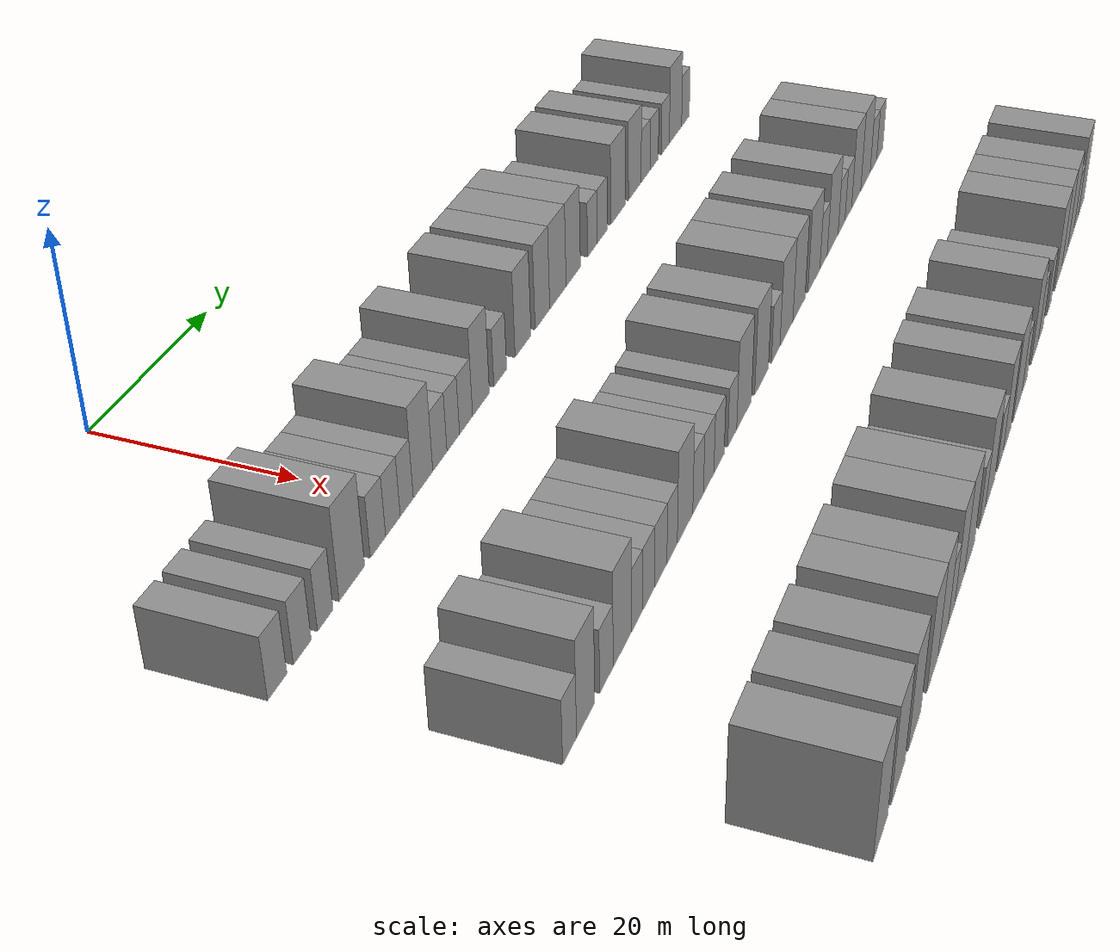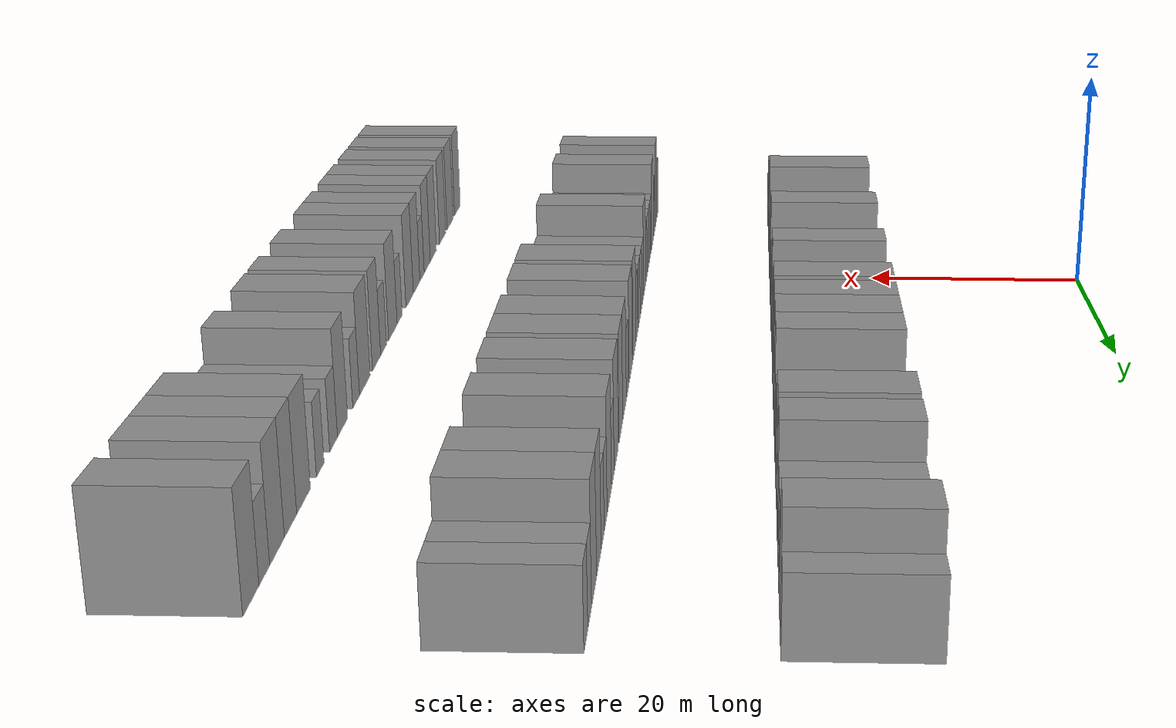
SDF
<sdf version="1.6">
 <world name="default">
  <model name="building_92">
   <static>1</static>
   <pose>25.0000 -22.3426 0 0.000000 0.000000 0.000000</pose>
   <link name="link">
    <pose>0 0 3.00 0 0 0</pose>
    <collision name="collision"><geometry><box><size>10.0000 2.9084 6.0000</size></box></geometry></collision>
    <visual name="visual">
     <cast_shadows>0</cast_shadows>
     <geometry><box><size>10.0000 2.9084 6.0000</size></box></geometry>
     <material>
      <script>
       <uri>model://grey_wall/materials/scripts</uri>
       <uri>model://grey_wall/materials/textures</uri>
       <name>vrc/grey_wall</name>
      </script>
     </material>
    </visual>
   </link>
  </model>
  <model name="building_93">
   <static>1</static>
   <pose>25.0000 -18.4885 0 0.000000 0.000000 0.000000</pose>
   <link name="link">
    <pose>0 0 3.00 0 0 0</pose>
    <collision name="collision"><geometry><box><size>10.0000 2.7998 6.0000</size></box></geometry></collision>
    <visual name="visual">
     <cast_shadows>0</cast_shadows>
     <geometry><box><size>10.0000 2.7998 6.0000</size></box></geometry>
     <material>
      <script>
       <uri>model://grey_wall/materials/scripts</uri>
       <uri>model://grey_wall/materials/textures</uri>
       <name>vrc/grey_wall</name>
      </script>
     </material>
    </visual>
   </link>
  </model>
  <model name="building_94">
   <static>1</static>
   <pose>25.0000 -14.8160 0 0.000000 0.000000 0.000000</pose>
   <link name="link">
    <pose>0 0 3.00 0 0 0</pose>
    <collision name="collision"><geometry><box><size>10.0000 2.5451 6.0000</size></box></geometry></collision>
    <visual name="visual">
     <cast_shadows>0</cast_shadows>
     <geometry><box><size>10.0000 2.5451 6.0000</size></box></geometry>
     <material>
      <script>
       <uri>model://grey_wall/materials/scripts</uri>
       <uri>model://grey_wall/materials/textures</uri>
       <name>vrc/grey_wall</name>
      </script>
     </material>
    </visual>
   </link>
  </model>
  <model name="building_95">
   <static>1</static>
   <pose>25.0000 -10.3498 0 0.000000 0.000000 0.000000</pose>
   <link name="link">
    <pose>0 0 4.50 0 0 0</pose>
    <collision name="collision"><geometry><box><size>10.0000 4.3874 9.0000</size></box></geometry></collision>
    <visual name="visual">
     <cast_shadows>0</cast_shadows>
     <geometry><box><size>10.0000 4.3874 9.0000</size></box></geometry>
     <material>
      <script>
       <uri>model://grey_wall/materials/scripts</uri>
       <uri>model://grey_wall/materials/textures</uri>
       <name>vrc/grey_wall</name>
      </script>
     </material>
    </visual>
   </link>
  </model>
  <model name="building_96">
   <static>1</static>
   <pose>25.0000 -5.7723 0 0.000000 0.000000 0.000000</pose>
   <link name="link">
    <pose>0 0 3.00 0 0 0</pose>
    <collision name="collision"><geometry><box><size>10.0000 2.7677 6.0000</size></box></geometry></collision>
    <visual name="visual">
     <cast_shadows>0</cast_shadows>
     <geometry><box><size>10.0000 2.7677 6.0000</size></box></geometry>
     <material>
      <script>
       <uri>model://grey_wall/materials/scripts</uri>
       <uri>model://grey_wall/materials/textures</uri>
       <name>vrc/grey_wall</name>
      </script>
     </material>
    </visual>
   </link>
  </model>
  <model name="building_97">
   <static>1</static>
   <pose>25.0000 -3.0412 0 0.000000 0.000000 0.000000</pose>
   <link name="link">
    <pose>0 0 3.00 0 0 0</pose>
    <collision name="collision"><geometry><box><size>10.0000 2.6944 6.0000</size></box></geometry></collision>
    <visual name="visual">
     <cast_shadows>0</cast_shadows>
     <geometry><box><size>10.0000 2.6944 6.0000</size></box></geometry>
     <material>
      <script>
       <uri>model://grey_wall/materials/scripts</uri>
       <uri>model://grey_wall/materials/textures</uri>
       <name>vrc/grey_wall</name>
      </script>
     </material>
    </visual>
   </link>
  </model>
  <model name="building_98">
   <static>1</static>
   <pose>25.0000 -0.4532 0 0.000000 0.000000 0.000000</pose>
   <link name="link">
    <pose>0 0 3.00 0 0 0</pose>
    <collision name="collision"><geometry><box><size>10.0000 2.4816 6.0000</size></box></geometry></collision>
    <visual name="visual">
     <cast_shadows>0</cast_shadows>
     <geometry><box><size>10.0000 2.4816 6.0000</size></box></geometry>
     <material>
      <script>
       <uri>model://grey_wall/materials/scripts</uri>
       <uri>model://grey_wall/materials/textures</uri>
       <name>vrc/grey_wall</name>
      </script>
     </material>
    </visual>
   </link>
  </model>
  <model name="building_99">
   <static>1</static>
   <pose>25.0000 2.6974 0 0.000000 0.000000 0.000000</pose>
   <link name="link">
    <pose>0 0 4.50 0 0 0</pose>
    <collision name="collision"><geometry><box><size>10.0000 3.8196 9.0000</size></box></geometry></collision>
    <visual name="visual">
     <cast_shadows>0</cast_shadows>
     <geometry><box><size>10.0000 3.8196 9.0000</size></box></geometry>
     <material>
      <script>
       <uri>model://grey_wall/materials/scripts</uri>
       <uri>model://grey_wall/materials/textures</uri>
       <name>vrc/grey_wall</name>
      </script>
     </material>
    </visual>
   </link>
  </model>
  <model name="building_100">
   <static>1</static>
   <pose>25.0000 6.0445 0 0.000000 0.000000 0.000000</pose>
   <link name="link">
    <pose>0 0 3.00 0 0 0</pose>
    <collision name="collision"><geometry><box><size>10.0000 2.8745 6.0000</size></box></geometry></collision>
    <visual name="visual">
     <cast_shadows>0</cast_shadows>
     <geometry><box><size>10.0000 2.8745 6.0000</size></box></geometry>
     <material>
      <script>
       <uri>model://grey_wall/materials/scripts</uri>
       <uri>model://grey_wall/materials/textures</uri>
       <name>vrc/grey_wall</name>
      </script>
     </material>
    </visual>
   </link>
  </model>
  <model name="building_101">
   <static>1</static>
   <pose>25.0000 8.7948 0 0.000000 0.000000 0.000000</pose>
   <link name="link">
    <pose>0 0 3.00 0 0 0</pose>
    <collision name="collision"><geometry><box><size>10.0000 2.6261 6.0000</size></box></geometry></collision>
    <visual name="visual">
     <cast_shadows>0</cast_shadows>
     <geometry><box><size>10.0000 2.6261 6.0000</size></box></geometry>
     <material>
      <script>
       <uri>model://grey_wall/materials/scripts</uri>
       <uri>model://grey_wall/materials/textures</uri>
       <name>vrc/grey_wall</name>
      </script>
     </material>
    </visual>
   </link>
  </model>
  <model name="building_102">
   <static>1</static>
   <pose>25.0000 11.5036 0 0.000000 0.000000 0.000000</pose>
   <link name="link">
    <pose>0 0 3.00 0 0 0</pose>
    <collision name="collision"><geometry><box><size>10.0000 2.7913 6.0000</size></box></geometry></collision>
    <visual name="visual">
     <cast_shadows>0</cast_shadows>
     <geometry><box><size>10.0000 2.7913 6.0000</size></box></geometry>
     <material>
      <script>
       <uri>model://grey_wall/materials/scripts</uri>
       <uri>model://grey_wall/materials/textures</uri>
       <name>vrc/grey_wall</name>
      </script>
     </material>
    </visual>
   </link>
  </model>
  <model name="building_103">
   <static>1</static>
   <pose>25.0000 14.7553 0 0.000000 0.000000 0.000000</pose>
   <link name="link">
    <pose>0 0 4.50 0 0 0</pose>
    <collision name="collision"><geometry><box><size>10.0000 3.7121 9.0000</size></box></geometry></collision>
    <visual name="visual">
     <cast_shadows>0</cast_shadows>
     <geometry><box><size>10.0000 3.7121 9.0000</size></box></geometry>
     <material>
      <script>
       <uri>model://grey_wall/materials/scripts</uri>
       <uri>model://grey_wall/materials/textures</uri>
       <name>vrc/grey_wall</name>
      </script>
     </material>
    </visual>
   </link>
  </model>
  <model name="building_104">
   <static>1</static>
   <pose>25.0000 19.0760 0 0.000000 0.000000 0.000000</pose>
   <link name="link">
    <pose>0 0 3.00 0 0 0</pose>
    <collision name="collision"><geometry><box><size>10.0000 2.9293 6.0000</size></box></geometry></collision>
    <visual name="visual">
     <cast_shadows>0</cast_shadows>
     <geometry><box><size>10.0000 2.9293 6.0000</size></box></geometry>
     <material>
      <script>
       <uri>model://grey_wall/materials/scripts</uri>
       <uri>model://grey_wall/materials/textures</uri>
       <name>vrc/grey_wall</name>
      </script>
     </material>
    </visual>
   </link>
  </model>
  <model name="building_105">
   <static>1</static>
   <pose>25.0000 24.4600 0 0.000000 0.000000 0.000000</pose>
   <link name="link">
    <pose>0 0 4.50 0 0 0</pose>
    <collision name="collision"><geometry><box><size>10.0000 3.8385 9.0000</size></box></geometry></collision>
    <visual name="visual">
     <cast_shadows>0</cast_shadows>
     <geometry><box><size>10.0000 3.8385 9.0000</size></box></geometry>
     <material>
      <script>
       <uri>model://grey_wall/materials/scripts</uri>
       <uri>model://grey_wall/materials/textures</uri>
       <name>vrc/grey_wall</name>
      </script>
     </material>
    </visual>
   </link>
  </model>
  <model name="building_106">
   <static>1</static>
   <pose>25.0000 29.2253 0 0.000000 0.000000 0.000000</pose>
   <link name="link">
    <pose>0 0 4.50 0 0 0</pose>
    <collision name="collision"><geometry><box><size>10.0000 3.6921 9.0000</size></box></geometry></collision>
    <visual name="visual">
     <cast_shadows>0</cast_shadows>
     <geometry><box><size>10.0000 3.6921 9.0000</size></box></geometry>
     <material>
      <script>
       <uri>model://grey_wall/materials/scripts</uri>
       <uri>model://grey_wall/materials/textures</uri>
       <name>vrc/grey_wall</name>
      </script>
     </material>
    </visual>
   </link>
  </model>
  <model name="building_107">
   <static>1</static>
   <pose>25.0000 33.2124 0 0.000000 0.000000 0.000000</pose>
   <link name="link">
    <pose>0 0 4.50 0 0 0</pose>
    <collision name="collision"><geometry><box><size>10.0000 4.2822 9.0000</size></box></geometry></collision>
    <visual name="visual">
     <cast_shadows>0</cast_shadows>
     <geometry><box><size>10.0000 4.2822 9.0000</size></box></geometry>
     <material>
      <script>
       <uri>model://grey_wall/materials/scripts</uri>
       <uri>model://grey_wall/materials/textures</uri>
       <name>vrc/grey_wall</name>
      </script>
     </material>
    </visual>
   </link>
  </model>
  <model name="building_108">
   <static>1</static>
   <pose>25.0000 37.2777 0 0.000000 0.000000 0.000000</pose>
   <link name="link">
    <pose>0 0 4.50 0 0 0</pose>
    <collision name="collision"><geometry><box><size>10.0000 3.8485 9.0000</size></box></geometry></collision>
    <visual name="visual">
     <cast_shadows>0</cast_shadows>
     <geometry><box><size>10.0000 3.8485 9.0000</size></box></geometry>
     <material>
      <script>
       <uri>model://grey_wall/materials/scripts</uri>
       <uri>model://grey_wall/materials/textures</uri>
       <name>vrc/grey_wall</name>
      </script>
     </material>
    </visual>
   </link>
  </model>
  <model name="building_109">
   <static>1</static>
   <pose>25.0000 42.5548 0 0.000000 0.000000 0.000000</pose>
   <link name="link">
    <pose>0 0 3.00 0 0 0</pose>
    <collision name="collision"><geometry><box><size>10.0000 2.7056 6.0000</size></box></geometry></collision>
    <visual name="visual">
     <cast_shadows>0</cast_shadows>
     <geometry><box><size>10.0000 2.7056 6.0000</size></box></geometry>
     <material>
      <script>
       <uri>model://grey_wall/materials/scripts</uri>
       <uri>model://grey_wall/materials/textures</uri>
       <name>vrc/grey_wall</name>
      </script>
     </material>
    </visual>
   </link>
  </model>
  <model name="building_110">
   <static>1</static>
   <pose>25.0000 45.3717 0 0.000000 0.000000 0.000000</pose>
   <link name="link">
    <pose>0 0 3.00 0 0 0</pose>
    <collision name="collision"><geometry><box><size>10.0000 2.9283 6.0000</size></box></geometry></collision>
    <visual name="visual">
     <cast_shadows>0</cast_shadows>
     <geometry><box><size>10.0000 2.9283 6.0000</size></box></geometry>
     <material>
      <script>
       <uri>model://grey_wall/materials/scripts</uri>
       <uri>model://grey_wall/materials/textures</uri>
       <name>vrc/grey_wall</name>
      </script>
     </material>
    </visual>
   </link>
  </model>
  <model name="building_111">
   <static>1</static>
   <pose>25.0000 49.9903 0 0.000000 0.000000 0.000000</pose>
   <link name="link">
    <pose>0 0 4.50 0 0 0</pose>
    <collision name="collision"><geometry><box><size>10.0000 4.3088 9.0000</size></box></geometry></collision>
    <visual name="visual">
     <cast_shadows>0</cast_shadows>
     <geometry><box><size>10.0000 4.3088 9.0000</size></box></geometry>
     <material>
      <script>
       <uri>model://grey_wall/materials/scripts</uri>
       <uri>model://grey_wall/materials/textures</uri>
       <name>vrc/grey_wall</name>
      </script>
     </material>
    </visual>
   </link>
  </model>
  <model name="building_112">
   <static>1</static>
   <pose>25.0000 55.1415 0 0.000000 0.000000 0.000000</pose>
   <link name="link">
    <pose>0 0 4.50 0 0 0</pose>
    <collision name="collision"><geometry><box><size>10.0000 3.9935 9.0000</size></box></geometry></collision>
    <visual name="visual">
     <cast_shadows>0</cast_shadows>
     <geometry><box><size>10.0000 3.9935 9.0000</size></box></geometry>
     <material>
      <script>
       <uri>model://grey_wall/materials/scripts</uri>
       <uri>model://grey_wall/materials/textures</uri>
       <name>vrc/grey_wall</name>
      </script>
     </material>
    </visual>
   </link>
  </model>
  <model name="building_113">
   <static>1</static>
   <pose>25.0000 58.5464 0 0.000000 0.000000 0.000000</pose>
   <link name="link">
    <pose>0 0 3.00 0 0 0</pose>
    <collision name="collision"><geometry><box><size>10.0000 2.8163 6.0000</size></box></geometry></collision>
    <visual name="visual">
     <cast_shadows>0</cast_shadows>
     <geometry><box><size>10.0000 2.8163 6.0000</size></box></geometry>
     <material>
      <script>
       <uri>model://grey_wall/materials/scripts</uri>
       <uri>model://grey_wall/materials/textures</uri>
       <name>vrc/grey_wall</name>
      </script>
     </material>
    </visual>
   </link>
  </model>
  <model name="building_114">
   <static>1</static>
   <pose>25.0000 61.3290 0 0.000000 0.000000 0.000000</pose>
   <link name="link">
    <pose>0 0 3.00 0 0 0</pose>
    <collision name="collision"><geometry><box><size>10.0000 2.7488 6.0000</size></box></geometry></collision>
    <visual name="visual">
     <cast_shadows>0</cast_shadows>
     <geometry><box><size>10.0000 2.7488 6.0000</size></box></geometry>
     <material>
      <script>
       <uri>model://grey_wall/materials/scripts</uri>
       <uri>model://grey_wall/materials/textures</uri>
       <name>vrc/grey_wall</name>
      </script>
     </material>
    </visual>
   </link>
  </model>
  <model name="building_115">
   <static>1</static>
   <pose>25.0000 65.0555 0 0.000000 0.000000 0.000000</pose>
   <link name="link">
    <pose>0 0 3.00 0 0 0</pose>
    <collision name="collision"><geometry><box><size>10.0000 2.7043 6.0000</size></box></geometry></collision>
    <visual name="visual">
     <cast_shadows>0</cast_shadows>
     <geometry><box><size>10.0000 2.7043 6.0000</size></box></geometry>
     <material>
      <script>
       <uri>model://grey_wall/materials/scripts</uri>
       <uri>model://grey_wall/materials/textures</uri>
       <name>vrc/grey_wall</name>
      </script>
     </material>
    </visual>
   </link>
  </model>
  <model name="building_116">
   <static>1</static>
   <pose>25.0000 68.5303 0 0.000000 0.000000 0.000000</pose>
   <link name="link">
    <pose>0 0 4.50 0 0 0</pose>
    <collision name="collision"><geometry><box><size>10.0000 4.2454 9.0000</size></box></geometry></collision>
    <visual name="visual">
     <cast_shadows>0</cast_shadows>
     <geometry><box><size>10.0000 4.2454 9.0000</size></box></geometry>
     <material>
      <script>
       <uri>model://grey_wall/materials/scripts</uri>
       <uri>model://grey_wall/materials/textures</uri>
       <name>vrc/grey_wall</name>
      </script>
     </material>
    </visual>
   </link>
  </model>
  <model name="building_117">
   <static>1</static>
   <pose>25.0000 72.0196 0 0.000000 0.000000 0.000000</pose>
   <link name="link">
    <pose>0 0 3.00 0 0 0</pose>
    <collision name="collision"><geometry><box><size>10.0000 2.7332 6.0000</size></box></geometry></collision>
    <visual name="visual">
     <cast_shadows>0</cast_shadows>
     <geometry><box><size>10.0000 2.7332 6.0000</size></box></geometry>
     <material>
      <script>
       <uri>model://grey_wall/materials/scripts</uri>
       <uri>model://grey_wall/materials/textures</uri>
       <name>vrc/grey_wall</name>
      </script>
     </material>
    </visual>
   </link>
  </model>
  <model name="building_278">
   <static>1</static>
   <pose>47.0000 -21.2920 0 0.000000 0.000000 0.000000</pose>
   <link name="link">
    <pose>0 0 3.00 0 0 0</pose>
    <collision name="collision"><geometry><box><size>10.0000 2.6957 6.0000</size></box></geometry></collision>
    <visual name="visual">
     <cast_shadows>0</cast_shadows>
     <geometry><box><size>10.0000 2.6957 6.0000</size></box></geometry>
     <material>
      <script>
       <uri>model://grey_wall/materials/scripts</uri>
       <uri>model://grey_wall/materials/textures</uri>
       <name>vrc/grey_wall</name>
      </script>
     </material>
    </visual>
   </link>
  </model>
  <model name="building_279">
   <static>1</static>
   <pose>47.0000 -18.1196 0 0.000000 0.000000 0.000000</pose>
   <link name="link">
    <pose>0 0 4.50 0 0 0</pose>
    <collision name="collision"><geometry><box><size>10.0000 3.6491 9.0000</size></box></geometry></collision>
    <visual name="visual">
     <cast_shadows>0</cast_shadows>
     <geometry><box><size>10.0000 3.6491 9.0000</size></box></geometry>
     <material>
      <script>
       <uri>model://grey_wall/materials/scripts</uri>
       <uri>model://grey_wall/materials/textures</uri>
       <name>vrc/grey_wall</name>
      </script>
     </material>
    </visual>
   </link>
  </model>
  <model name="building_280">
   <static>1</static>
   <pose>47.0000 -13.8722 0 0.000000 0.000000 0.000000</pose>
   <link name="link">
    <pose>0 0 3.00 0 0 0</pose>
    <collision name="collision"><geometry><box><size>10.0000 2.8456 6.0000</size></box></geometry></collision>
    <visual name="visual">
     <cast_shadows>0</cast_shadows>
     <geometry><box><size>10.0000 2.8456 6.0000</size></box></geometry>
     <material>
      <script>
       <uri>model://grey_wall/materials/scripts</uri>
       <uri>model://grey_wall/materials/textures</uri>
       <name>vrc/grey_wall</name>
      </script>
     </material>
    </visual>
   </link>
  </model>
  <model name="building_281">
   <static>1</static>
   <pose>47.0000 -10.4534 0 0.000000 0.000000 0.000000</pose>
   <link name="link">
    <pose>0 0 4.50 0 0 0</pose>
    <collision name="collision"><geometry><box><size>10.0000 3.9921 9.0000</size></box></geometry></collision>
    <visual name="visual">
     <cast_shadows>0</cast_shadows>
     <geometry><box><size>10.0000 3.9921 9.0000</size></box></geometry>
     <material>
      <script>
       <uri>model://grey_wall/materials/scripts</uri>
       <uri>model://grey_wall/materials/textures</uri>
       <name>vrc/grey_wall</name>
      </script>
     </material>
    </visual>
   </link>
  </model>
  <model name="building_282">
   <static>1</static>
   <pose>47.0000 -7.2385 0 0.000000 0.000000 0.000000</pose>
   <link name="link">
    <pose>0 0 3.00 0 0 0</pose>
    <collision name="collision"><geometry><box><size>10.0000 2.4376 6.0000</size></box></geometry></collision>
    <visual name="visual">
     <cast_shadows>0</cast_shadows>
     <geometry><box><size>10.0000 2.4376 6.0000</size></box></geometry>
     <material>
      <script>
       <uri>model://grey_wall/materials/scripts</uri>
       <uri>model://grey_wall/materials/textures</uri>
       <name>vrc/grey_wall</name>
      </script>
     </material>
    </visual>
   </link>
  </model>
  <model name="building_283">
   <static>1</static>
   <pose>47.0000 -4.5840 0 0.000000 0.000000 0.000000</pose>
   <link name="link">
    <pose>0 0 3.00 0 0 0</pose>
    <collision name="collision"><geometry><box><size>10.0000 2.8716 6.0000</size></box></geometry></collision>
    <visual name="visual">
     <cast_shadows>0</cast_shadows>
     <geometry><box><size>10.0000 2.8716 6.0000</size></box></geometry>
     <material>
      <script>
       <uri>model://grey_wall/materials/scripts</uri>
       <uri>model://grey_wall/materials/textures</uri>
       <name>vrc/grey_wall</name>
      </script>
     </material>
    </visual>
   </link>
  </model>
  <model name="building_284">
   <static>1</static>
   <pose>47.0000 -1.6698 0 0.000000 0.000000 0.000000</pose>
   <link name="link">
    <pose>0 0 3.00 0 0 0</pose>
    <collision name="collision"><geometry><box><size>10.0000 2.9567 6.0000</size></box></geometry></collision>
    <visual name="visual">
     <cast_shadows>0</cast_shadows>
     <geometry><box><size>10.0000 2.9567 6.0000</size></box></geometry>
     <material>
      <script>
       <uri>model://grey_wall/materials/scripts</uri>
       <uri>model://grey_wall/materials/textures</uri>
       <name>vrc/grey_wall</name>
      </script>
     </material>
    </visual>
   </link>
  </model>
  <model name="building_285">
   <static>1</static>
   <pose>47.0000 1.0946 0 0.000000 0.000000 0.000000</pose>
   <link name="link">
    <pose>0 0 3.00 0 0 0</pose>
    <collision name="collision"><geometry><box><size>10.0000 2.5721 6.0000</size></box></geometry></collision>
    <visual name="visual">
     <cast_shadows>0</cast_shadows>
     <geometry><box><size>10.0000 2.5721 6.0000</size></box></geometry>
     <material>
      <script>
       <uri>model://grey_wall/materials/scripts</uri>
       <uri>model://grey_wall/materials/textures</uri>
       <name>vrc/grey_wall</name>
      </script>
     </material>
    </visual>
   </link>
  </model>
  <model name="building_286">
   <static>1</static>
   <pose>47.0000 4.3606 0 0.000000 0.000000 0.000000</pose>
   <link name="link">
    <pose>0 0 4.50 0 0 0</pose>
    <collision name="collision"><geometry><box><size>10.0000 3.9599 9.0000</size></box></geometry></collision>
    <visual name="visual">
     <cast_shadows>0</cast_shadows>
     <geometry><box><size>10.0000 3.9599 9.0000</size></box></geometry>
     <material>
      <script>
       <uri>model://grey_wall/materials/scripts</uri>
       <uri>model://grey_wall/materials/textures</uri>
       <name>vrc/grey_wall</name>
      </script>
     </material>
    </visual>
   </link>
  </model>
  <model name="building_287">
   <static>1</static>
   <pose>47.0000 7.7566 0 0.000000 0.000000 0.000000</pose>
   <link name="link">
    <pose>0 0 3.00 0 0 0</pose>
    <collision name="collision"><geometry><box><size>10.0000 2.8321 6.0000</size></box></geometry></collision>
    <visual name="visual">
     <cast_shadows>0</cast_shadows>
     <geometry><box><size>10.0000 2.8321 6.0000</size></box></geometry>
     <material>
      <script>
       <uri>model://grey_wall/materials/scripts</uri>
       <uri>model://grey_wall/materials/textures</uri>
       <name>vrc/grey_wall</name>
      </script>
     </material>
    </visual>
   </link>
  </model>
  <model name="building_288">
   <static>1</static>
   <pose>47.0000 10.5924 0 0.000000 0.000000 0.000000</pose>
   <link name="link">
    <pose>0 0 3.00 0 0 0</pose>
    <collision name="collision"><geometry><box><size>10.0000 2.8394 6.0000</size></box></geometry></collision>
    <visual name="visual">
     <cast_shadows>0</cast_shadows>
     <geometry><box><size>10.0000 2.8394 6.0000</size></box></geometry>
     <material>
      <script>
       <uri>model://grey_wall/materials/scripts</uri>
       <uri>model://grey_wall/materials/textures</uri>
       <name>vrc/grey_wall</name>
      </script>
     </material>
    </visual>
   </link>
  </model>
  <model name="building_289">
   <static>1</static>
   <pose>47.0000 13.4648 0 0.000000 0.000000 0.000000</pose>
   <link name="link">
    <pose>0 0 3.00 0 0 0</pose>
    <collision name="collision"><geometry><box><size>10.0000 2.9056 6.0000</size></box></geometry></collision>
    <visual name="visual">
     <cast_shadows>0</cast_shadows>
     <geometry><box><size>10.0000 2.9056 6.0000</size></box></geometry>
     <material>
      <script>
       <uri>model://grey_wall/materials/scripts</uri>
       <uri>model://grey_wall/materials/textures</uri>
       <name>vrc/grey_wall</name>
      </script>
     </material>
    </visual>
   </link>
  </model>
  <model name="building_290">
   <static>1</static>
   <pose>47.0000 17.2246 0 0.000000 0.000000 0.000000</pose>
   <link name="link">
    <pose>0 0 3.00 0 0 0</pose>
    <collision name="collision"><geometry><box><size>10.0000 2.6140 6.0000</size></box></geometry></collision>
    <visual name="visual">
     <cast_shadows>0</cast_shadows>
     <geometry><box><size>10.0000 2.6140 6.0000</size></box></geometry>
     <material>
      <script>
       <uri>model://grey_wall/materials/scripts</uri>
       <uri>model://grey_wall/materials/textures</uri>
       <name>vrc/grey_wall</name>
      </script>
     </material>
    </visual>
   </link>
  </model>
  <model name="building_291">
   <static>1</static>
   <pose>47.0000 20.7468 0 0.000000 0.000000 0.000000</pose>
   <link name="link">
    <pose>0 0 4.50 0 0 0</pose>
    <collision name="collision"><geometry><box><size>10.0000 4.4303 9.0000</size></box></geometry></collision>
    <visual name="visual">
     <cast_shadows>0</cast_shadows>
     <geometry><box><size>10.0000 4.4303 9.0000</size></box></geometry>
     <material>
      <script>
       <uri>model://grey_wall/materials/scripts</uri>
       <uri>model://grey_wall/materials/textures</uri>
       <name>vrc/grey_wall</name>
      </script>
     </material>
    </visual>
   </link>
  </model>
  <model name="building_292">
   <static>1</static>
   <pose>47.0000 26.1352 0 0.000000 0.000000 0.000000</pose>
   <link name="link">
    <pose>0 0 4.50 0 0 0</pose>
    <collision name="collision"><geometry><box><size>10.0000 4.3466 9.0000</size></box></geometry></collision>
    <visual name="visual">
     <cast_shadows>0</cast_shadows>
     <geometry><box><size>10.0000 4.3466 9.0000</size></box></geometry>
     <material>
      <script>
       <uri>model://grey_wall/materials/scripts</uri>
       <uri>model://grey_wall/materials/textures</uri>
       <name>vrc/grey_wall</name>
      </script>
     </material>
    </visual>
   </link>
  </model>
  <model name="building_293">
   <static>1</static>
   <pose>47.0000 30.7119 0 0.000000 0.000000 0.000000</pose>
   <link name="link">
    <pose>0 0 3.00 0 0 0</pose>
    <collision name="collision"><geometry><box><size>10.0000 2.8070 6.0000</size></box></geometry></collision>
    <visual name="visual">
     <cast_shadows>0</cast_shadows>
     <geometry><box><size>10.0000 2.8070 6.0000</size></box></geometry>
     <material>
      <script>
       <uri>model://grey_wall/materials/scripts</uri>
       <uri>model://grey_wall/materials/textures</uri>
       <name>vrc/grey_wall</name>
      </script>
     </material>
    </visual>
   </link>
  </model>
  <model name="building_294">
   <static>1</static>
   <pose>47.0000 34.3242 0 0.000000 0.000000 0.000000</pose>
   <link name="link">
    <pose>0 0 4.50 0 0 0</pose>
    <collision name="collision"><geometry><box><size>10.0000 4.4177 9.0000</size></box></geometry></collision>
    <visual name="visual">
     <cast_shadows>0</cast_shadows>
     <geometry><box><size>10.0000 4.4177 9.0000</size></box></geometry>
     <material>
      <script>
       <uri>model://grey_wall/materials/scripts</uri>
       <uri>model://grey_wall/materials/textures</uri>
       <name>vrc/grey_wall</name>
      </script>
     </material>
    </visual>
   </link>
  </model>
  <model name="building_295">
   <static>1</static>
   <pose>47.0000 38.7011 0 0.000000 0.000000 0.000000</pose>
   <link name="link">
    <pose>0 0 4.50 0 0 0</pose>
    <collision name="collision"><geometry><box><size>10.0000 4.3360 9.0000</size></box></geometry></collision>
    <visual name="visual">
     <cast_shadows>0</cast_shadows>
     <geometry><box><size>10.0000 4.3360 9.0000</size></box></geometry>
     <material>
      <script>
       <uri>model://grey_wall/materials/scripts</uri>
       <uri>model://grey_wall/materials/textures</uri>
       <name>vrc/grey_wall</name>
      </script>
     </material>
    </visual>
   </link>
  </model>
  <model name="building_296">
   <static>1</static>
   <pose>47.0000 44.0962 0 0.000000 0.000000 0.000000</pose>
   <link name="link">
    <pose>0 0 4.50 0 0 0</pose>
    <collision name="collision"><geometry><box><size>10.0000 4.4543 9.0000</size></box></geometry></collision>
    <visual name="visual">
     <cast_shadows>0</cast_shadows>
     <geometry><box><size>10.0000 4.4543 9.0000</size></box></geometry>
     <material>
      <script>
       <uri>model://grey_wall/materials/scripts</uri>
       <uri>model://grey_wall/materials/textures</uri>
       <name>vrc/grey_wall</name>
      </script>
     </material>
    </visual>
   </link>
  </model>
  <model name="building_297">
   <static>1</static>
   <pose>47.0000 47.7368 0 0.000000 0.000000 0.000000</pose>
   <link name="link">
    <pose>0 0 3.00 0 0 0</pose>
    <collision name="collision"><geometry><box><size>10.0000 2.8269 6.0000</size></box></geometry></collision>
    <visual name="visual">
     <cast_shadows>0</cast_shadows>
     <geometry><box><size>10.0000 2.8269 6.0000</size></box></geometry>
     <material>
      <script>
       <uri>model://grey_wall/materials/scripts</uri>
       <uri>model://grey_wall/materials/textures</uri>
       <name>vrc/grey_wall</name>
      </script>
     </material>
    </visual>
   </link>
  </model>
  <model name="building_298">
   <static>1</static>
   <pose>47.0000 51.3016 0 0.000000 0.000000 0.000000</pose>
   <link name="link">
    <pose>0 0 4.50 0 0 0</pose>
    <collision name="collision"><geometry><box><size>10.0000 4.3028 9.0000</size></box></geometry></collision>
    <visual name="visual">
     <cast_shadows>0</cast_shadows>
     <geometry><box><size>10.0000 4.3028 9.0000</size></box></geometry>
     <material>
      <script>
       <uri>model://grey_wall/materials/scripts</uri>
       <uri>model://grey_wall/materials/textures</uri>
       <name>vrc/grey_wall</name>
      </script>
     </material>
    </visual>
   </link>
  </model>
  <model name="building_299">
   <static>1</static>
   <pose>47.0000 54.8426 0 0.000000 0.000000 0.000000</pose>
   <link name="link">
    <pose>0 0 3.00 0 0 0</pose>
    <collision name="collision"><geometry><box><size>10.0000 2.7792 6.0000</size></box></geometry></collision>
    <visual name="visual">
     <cast_shadows>0</cast_shadows>
     <geometry><box><size>10.0000 2.7792 6.0000</size></box></geometry>
     <material>
      <script>
       <uri>model://grey_wall/materials/scripts</uri>
       <uri>model://grey_wall/materials/textures</uri>
       <name>vrc/grey_wall</name>
      </script>
     </material>
    </visual>
   </link>
  </model>
  <model name="building_300">
   <static>1</static>
   <pose>47.0000 57.6184 0 0.000000 0.000000 0.000000</pose>
   <link name="link">
    <pose>0 0 3.00 0 0 0</pose>
    <collision name="collision"><geometry><box><size>10.0000 2.7725 6.0000</size></box></geometry></collision>
    <visual name="visual">
     <cast_shadows>0</cast_shadows>
     <geometry><box><size>10.0000 2.7725 6.0000</size></box></geometry>
     <material>
      <script>
       <uri>model://grey_wall/materials/scripts</uri>
       <uri>model://grey_wall/materials/textures</uri>
       <name>vrc/grey_wall</name>
      </script>
     </material>
    </visual>
   </link>
  </model>
  <model name="building_301">
   <static>1</static>
   <pose>47.0000 60.9522 0 0.000000 0.000000 0.000000</pose>
   <link name="link">
    <pose>0 0 4.50 0 0 0</pose>
    <collision name="collision"><geometry><box><size>10.0000 3.8949 9.0000</size></box></geometry></collision>
    <visual name="visual">
     <cast_shadows>0</cast_shadows>
     <geometry><box><size>10.0000 3.8949 9.0000</size></box></geometry>
     <material>
      <script>
       <uri>model://grey_wall/materials/scripts</uri>
       <uri>model://grey_wall/materials/textures</uri>
       <name>vrc/grey_wall</name>
      </script>
     </material>
    </visual>
   </link>
  </model>
  <model name="building_302">
   <static>1</static>
   <pose>47.0000 64.9925 0 0.000000 0.000000 0.000000</pose>
   <link name="link">
    <pose>0 0 4.50 0 0 0</pose>
    <collision name="collision"><geometry><box><size>10.0000 4.1858 9.0000</size></box></geometry></collision>
    <visual name="visual">
     <cast_shadows>0</cast_shadows>
     <geometry><box><size>10.0000 4.1858 9.0000</size></box></geometry>
     <material>
      <script>
       <uri>model://grey_wall/materials/scripts</uri>
       <uri>model://grey_wall/materials/textures</uri>
       <name>vrc/grey_wall</name>
      </script>
     </material>
    </visual>
   </link>
  </model>
  <model name="building_303">
   <static>1</static>
   <pose>47.0000 68.5328 0 0.000000 0.000000 0.000000</pose>
   <link name="link">
    <pose>0 0 3.00 0 0 0</pose>
    <collision name="collision"><geometry><box><size>10.0000 2.8948 6.0000</size></box></geometry></collision>
    <visual name="visual">
     <cast_shadows>0</cast_shadows>
     <geometry><box><size>10.0000 2.8948 6.0000</size></box></geometry>
     <material>
      <script>
       <uri>model://grey_wall/materials/scripts</uri>
       <uri>model://grey_wall/materials/textures</uri>
       <name>vrc/grey_wall</name>
      </script>
     </material>
    </visual>
   </link>
  </model>
  <model name="building_304">
   <static>1</static>
   <pose>47.0000 71.4136 0 0.000000 0.000000 0.000000</pose>
   <link name="link">
    <pose>0 0 3.00 0 0 0</pose>
    <collision name="collision"><geometry><box><size>10.0000 2.8668 6.0000</size></box></geometry></collision>
    <visual name="visual">
     <cast_shadows>0</cast_shadows>
     <geometry><box><size>10.0000 2.8668 6.0000</size></box></geometry>
     <material>
      <script>
       <uri>model://grey_wall/materials/scripts</uri>
       <uri>model://grey_wall/materials/textures</uri>
       <name>vrc/grey_wall</name>
      </script>
     </material>
    </visual>
   </link>
  </model>
  <model name="building_473">
   <static>1</static>
   <pose>69.0000 -21.8870 0 0.000000 0.000000 0.000000</pose>
   <link name="link">
    <pose>0 0 4.50 0 0 0</pose>
    <collision name="collision"><geometry><box><size>10.0000 4.1560 9.0000</size></box></geometry></collision>
    <visual name="visual">
     <cast_shadows>0</cast_shadows>
     <geometry><box><size>10.0000 4.1560 9.0000</size></box></geometry>
     <material>
      <script>
       <uri>model://grey_wall/materials/scripts</uri>
       <uri>model://grey_wall/materials/textures</uri>
       <name>vrc/grey_wall</name>
      </script>
     </material>
    </visual>
   </link>
  </model>
  <model name="building_474">
   <static>1</static>
   <pose>69.0000 -16.7043 0 0.000000 0.000000 0.000000</pose>
   <link name="link">
    <pose>0 0 4.50 0 0 0</pose>
    <collision name="collision"><geometry><box><size>10.0000 4.2093 9.0000</size></box></geometry></collision>
    <visual name="visual">
     <cast_shadows>0</cast_shadows>
     <geometry><box><size>10.0000 4.2093 9.0000</size></box></geometry>
     <material>
      <script>
       <uri>model://grey_wall/materials/scripts</uri>
       <uri>model://grey_wall/materials/textures</uri>
       <name>vrc/grey_wall</name>
      </script>
     </material>
    </visual>
   </link>
  </model>
  <model name="building_475">
   <static>1</static>
   <pose>69.0000 -11.5605 0 0.000000 0.000000 0.000000</pose>
   <link name="link">
    <pose>0 0 4.50 0 0 0</pose>
    <collision name="collision"><geometry><box><size>10.0000 4.0784 9.0000</size></box></geometry></collision>
    <visual name="visual">
     <cast_shadows>0</cast_shadows>
     <geometry><box><size>10.0000 4.0784 9.0000</size></box></geometry>
     <material>
      <script>
       <uri>model://grey_wall/materials/scripts</uri>
       <uri>model://grey_wall/materials/textures</uri>
       <name>vrc/grey_wall</name>
      </script>
     </material>
    </visual>
   </link>
  </model>
  <model name="building_476">
   <static>1</static>
   <pose>69.0000 -5.6003 0 0.000000 0.000000 0.000000</pose>
   <link name="link">
    <pose>0 0 4.50 0 0 0</pose>
    <collision name="collision"><geometry><box><size>10.0000 3.8418 9.0000</size></box></geometry></collision>
    <visual name="visual">
     <cast_shadows>0</cast_shadows>
     <geometry><box><size>10.0000 3.8418 9.0000</size></box></geometry>
     <material>
      <script>
       <uri>model://grey_wall/materials/scripts</uri>
       <uri>model://grey_wall/materials/textures</uri>
       <name>vrc/grey_wall</name>
      </script>
     </material>
    </visual>
   </link>
  </model>
  <model name="building_477">
   <static>1</static>
   <pose>69.0000 -1.8632 0 0.000000 0.000000 0.000000</pose>
   <link name="link">
    <pose>0 0 4.50 0 0 0</pose>
    <collision name="collision"><geometry><box><size>10.0000 3.6325 9.0000</size></box></geometry></collision>
    <visual name="visual">
     <cast_shadows>0</cast_shadows>
     <geometry><box><size>10.0000 3.6325 9.0000</size></box></geometry>
     <material>
      <script>
       <uri>model://grey_wall/materials/scripts</uri>
       <uri>model://grey_wall/materials/textures</uri>
       <name>vrc/grey_wall</name>
      </script>
     </material>
    </visual>
   </link>
  </model>
  <model name="building_478">
   <static>1</static>
   <pose>69.0000 1.2234 0 0.000000 0.000000 0.000000</pose>
   <link name="link">
    <pose>0 0 3.00 0 0 0</pose>
    <collision name="collision"><geometry><box><size>10.0000 2.5408 6.0000</size></box></geometry></collision>
    <visual name="visual">
     <cast_shadows>0</cast_shadows>
     <geometry><box><size>10.0000 2.5408 6.0000</size></box></geometry>
     <material>
      <script>
       <uri>model://grey_wall/materials/scripts</uri>
       <uri>model://grey_wall/materials/textures</uri>
       <name>vrc/grey_wall</name>
      </script>
     </material>
    </visual>
   </link>
  </model>
  <model name="building_479">
   <static>1</static>
   <pose>69.0000 4.3413 0 0.000000 0.000000 0.000000</pose>
   <link name="link">
    <pose>0 0 4.50 0 0 0</pose>
    <collision name="collision"><geometry><box><size>10.0000 3.6951 9.0000</size></box></geometry></collision>
    <visual name="visual">
     <cast_shadows>0</cast_shadows>
     <geometry><box><size>10.0000 3.6951 9.0000</size></box></geometry>
     <material>
      <script>
       <uri>model://grey_wall/materials/scripts</uri>
       <uri>model://grey_wall/materials/textures</uri>
       <name>vrc/grey_wall</name>
      </script>
     </material>
    </visual>
   </link>
  </model>
  <model name="building_480">
   <static>1</static>
   <pose>69.0000 8.1912 0 0.000000 0.000000 0.000000</pose>
   <link name="link">
    <pose>0 0 4.50 0 0 0</pose>
    <collision name="collision"><geometry><box><size>10.0000 4.0047 9.0000</size></box></geometry></collision>
    <visual name="visual">
     <cast_shadows>0</cast_shadows>
     <geometry><box><size>10.0000 4.0047 9.0000</size></box></geometry>
     <material>
      <script>
       <uri>model://grey_wall/materials/scripts</uri>
       <uri>model://grey_wall/materials/textures</uri>
       <name>vrc/grey_wall</name>
      </script>
     </material>
    </visual>
   </link>
  </model>
  <model name="building_481">
   <static>1</static>
   <pose>69.0000 13.4718 0 0.000000 0.000000 0.000000</pose>
   <link name="link">
    <pose>0 0 3.00 0 0 0</pose>
    <collision name="collision"><geometry><box><size>10.0000 2.5565 6.0000</size></box></geometry></collision>
    <visual name="visual">
     <cast_shadows>0</cast_shadows>
     <geometry><box><size>10.0000 2.5565 6.0000</size></box></geometry>
     <material>
      <script>
       <uri>model://grey_wall/materials/scripts</uri>
       <uri>model://grey_wall/materials/textures</uri>
       <name>vrc/grey_wall</name>
      </script>
     </material>
    </visual>
   </link>
  </model>
  <model name="building_482">
   <static>1</static>
   <pose>69.0000 16.8486 0 0.000000 0.000000 0.000000</pose>
   <link name="link">
    <pose>0 0 4.50 0 0 0</pose>
    <collision name="collision"><geometry><box><size>10.0000 4.1969 9.0000</size></box></geometry></collision>
    <visual name="visual">
     <cast_shadows>0</cast_shadows>
     <geometry><box><size>10.0000 4.1969 9.0000</size></box></geometry>
     <material>
      <script>
       <uri>model://grey_wall/materials/scripts</uri>
       <uri>model://grey_wall/materials/textures</uri>
       <name>vrc/grey_wall</name>
      </script>
     </material>
    </visual>
   </link>
  </model>
  <model name="building_483">
   <static>1</static>
   <pose>69.0000 21.3232 0 0.000000 0.000000 0.000000</pose>
   <link name="link">
    <pose>0 0 3.00 0 0 0</pose>
    <collision name="collision"><geometry><box><size>10.0000 2.7524 6.0000</size></box></geometry></collision>
    <visual name="visual">
     <cast_shadows>0</cast_shadows>
     <geometry><box><size>10.0000 2.7524 6.0000</size></box></geometry>
     <material>
      <script>
       <uri>model://grey_wall/materials/scripts</uri>
       <uri>model://grey_wall/materials/textures</uri>
       <name>vrc/grey_wall</name>
      </script>
     </material>
    </visual>
   </link>
  </model>
  <model name="building_484">
   <static>1</static>
   <pose>69.0000 24.5539 0 0.000000 0.000000 0.000000</pose>
   <link name="link">
    <pose>0 0 4.50 0 0 0</pose>
    <collision name="collision"><geometry><box><size>10.0000 3.7089 9.0000</size></box></geometry></collision>
    <visual name="visual">
     <cast_shadows>0</cast_shadows>
     <geometry><box><size>10.0000 3.7089 9.0000</size></box></geometry>
     <material>
      <script>
       <uri>model://grey_wall/materials/scripts</uri>
       <uri>model://grey_wall/materials/textures</uri>
       <name>vrc/grey_wall</name>
      </script>
     </material>
    </visual>
   </link>
  </model>
  <model name="building_485">
   <static>1</static>
   <pose>69.0000 29.6540 0 0.000000 0.000000 0.000000</pose>
   <link name="link">
    <pose>0 0 4.50 0 0 0</pose>
    <collision name="collision"><geometry><box><size>10.0000 4.4913 9.0000</size></box></geometry></collision>
    <visual name="visual">
     <cast_shadows>0</cast_shadows>
     <geometry><box><size>10.0000 4.4913 9.0000</size></box></geometry>
     <material>
      <script>
       <uri>model://grey_wall/materials/scripts</uri>
       <uri>model://grey_wall/materials/textures</uri>
       <name>vrc/grey_wall</name>
      </script>
     </material>
    </visual>
   </link>
  </model>
  <model name="building_486">
   <static>1</static>
   <pose>69.0000 33.2737 0 0.000000 0.000000 0.000000</pose>
   <link name="link">
    <pose>0 0 3.00 0 0 0</pose>
    <collision name="collision"><geometry><box><size>10.0000 2.7481 6.0000</size></box></geometry></collision>
    <visual name="visual">
     <cast_shadows>0</cast_shadows>
     <geometry><box><size>10.0000 2.7481 6.0000</size></box></geometry>
     <material>
      <script>
       <uri>model://grey_wall/materials/scripts</uri>
       <uri>model://grey_wall/materials/textures</uri>
       <name>vrc/grey_wall</name>
      </script>
     </material>
    </visual>
   </link>
  </model>
  <model name="building_487">
   <static>1</static>
   <pose>69.0000 38.5764 0 0.000000 0.000000 0.000000</pose>
   <link name="link">
    <pose>0 0 4.50 0 0 0</pose>
    <collision name="collision"><geometry><box><size>10.0000 3.8573 9.0000</size></box></geometry></collision>
    <visual name="visual">
     <cast_shadows>0</cast_shadows>
     <geometry><box><size>10.0000 3.8573 9.0000</size></box></geometry>
     <material>
      <script>
       <uri>model://grey_wall/materials/scripts</uri>
       <uri>model://grey_wall/materials/textures</uri>
       <name>vrc/grey_wall</name>
      </script>
     </material>
    </visual>
   </link>
  </model>
  <model name="building_488">
   <static>1</static>
   <pose>69.0000 41.9110 0 0.000000 0.000000 0.000000</pose>
   <link name="link">
    <pose>0 0 3.00 0 0 0</pose>
    <collision name="collision"><geometry><box><size>10.0000 2.8119 6.0000</size></box></geometry></collision>
    <visual name="visual">
     <cast_shadows>0</cast_shadows>
     <geometry><box><size>10.0000 2.8119 6.0000</size></box></geometry>
     <material>
      <script>
       <uri>model://grey_wall/materials/scripts</uri>
       <uri>model://grey_wall/materials/textures</uri>
       <name>vrc/grey_wall</name>
      </script>
     </material>
    </visual>
   </link>
  </model>
  <model name="building_489">
   <static>1</static>
   <pose>69.0000 46.6106 0 0.000000 0.000000 0.000000</pose>
   <link name="link">
    <pose>0 0 3.00 0 0 0</pose>
    <collision name="collision"><geometry><box><size>10.0000 2.5873 6.0000</size></box></geometry></collision>
    <visual name="visual">
     <cast_shadows>0</cast_shadows>
     <geometry><box><size>10.0000 2.5873 6.0000</size></box></geometry>
     <material>
      <script>
       <uri>model://grey_wall/materials/scripts</uri>
       <uri>model://grey_wall/materials/textures</uri>
       <name>vrc/grey_wall</name>
      </script>
     </material>
    </visual>
   </link>
  </model>
  <model name="building_490">
   <static>1</static>
   <pose>69.0000 52.0711 0 0.000000 0.000000 0.000000</pose>
   <link name="link">
    <pose>0 0 4.50 0 0 0</pose>
    <collision name="collision"><geometry><box><size>10.0000 4.3338 9.0000</size></box></geometry></collision>
    <visual name="visual">
     <cast_shadows>0</cast_shadows>
     <geometry><box><size>10.0000 4.3338 9.0000</size></box></geometry>
     <material>
      <script>
       <uri>model://grey_wall/materials/scripts</uri>
       <uri>model://grey_wall/materials/textures</uri>
       <name>vrc/grey_wall</name>
      </script>
     </material>
    </visual>
   </link>
  </model>
  <model name="building_491">
   <static>1</static>
   <pose>69.0000 56.0588 0 0.000000 0.000000 0.000000</pose>
   <link name="link">
    <pose>0 0 4.50 0 0 0</pose>
    <collision name="collision"><geometry><box><size>10.0000 3.6416 9.0000</size></box></geometry></collision>
    <visual name="visual">
     <cast_shadows>0</cast_shadows>
     <geometry><box><size>10.0000 3.6416 9.0000</size></box></geometry>
     <material>
      <script>
       <uri>model://grey_wall/materials/scripts</uri>
       <uri>model://grey_wall/materials/textures</uri>
       <name>vrc/grey_wall</name>
      </script>
     </material>
    </visual>
   </link>
  </model>
  <model name="building_492">
   <static>1</static>
   <pose>69.0000 59.9606 0 0.000000 0.000000 0.000000</pose>
   <link name="link">
    <pose>0 0 4.50 0 0 0</pose>
    <collision name="collision"><geometry><box><size>10.0000 4.1620 9.0000</size></box></geometry></collision>
    <visual name="visual">
     <cast_shadows>0</cast_shadows>
     <geometry><box><size>10.0000 4.1620 9.0000</size></box></geometry>
     <material>
      <script>
       <uri>model://grey_wall/materials/scripts</uri>
       <uri>model://grey_wall/materials/textures</uri>
       <name>vrc/grey_wall</name>
      </script>
     </material>
    </visual>
   </link>
  </model>
  <model name="building_493">
   <static>1</static>
   <pose>69.0000 63.4613 0 0.000000 0.000000 0.000000</pose>
   <link name="link">
    <pose>0 0 3.00 0 0 0</pose>
    <collision name="collision"><geometry><box><size>10.0000 2.8393 6.0000</size></box></geometry></collision>
    <visual name="visual">
     <cast_shadows>0</cast_shadows>
     <geometry><box><size>10.0000 2.8393 6.0000</size></box></geometry>
     <material>
      <script>
       <uri>model://grey_wall/materials/scripts</uri>
       <uri>model://grey_wall/materials/textures</uri>
       <name>vrc/grey_wall</name>
      </script>
     </material>
    </visual>
   </link>
  </model>
  <model name="building_494">
   <static>1</static>
   <pose>69.0000 66.9531 0 0.000000 0.000000 0.000000</pose>
   <link name="link">
    <pose>0 0 4.50 0 0 0</pose>
    <collision name="collision"><geometry><box><size>10.0000 4.1444 9.0000</size></box></geometry></collision>
    <visual name="visual">
     <cast_shadows>0</cast_shadows>
     <geometry><box><size>10.0000 4.1444 9.0000</size></box></geometry>
     <material>
      <script>
       <uri>model://grey_wall/materials/scripts</uri>
       <uri>model://grey_wall/materials/textures</uri>
       <name>vrc/grey_wall</name>
      </script>
     </material>
    </visual>
   </link>
  </model>
 </world>
</sdf>
